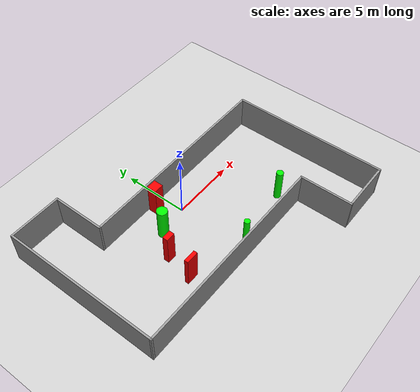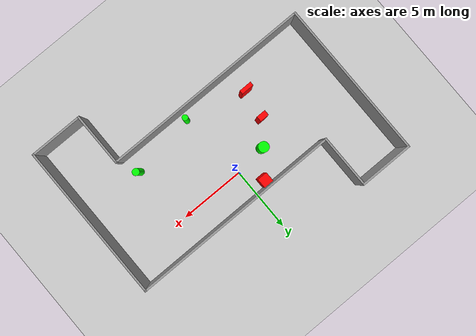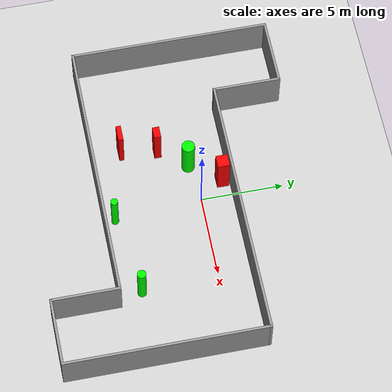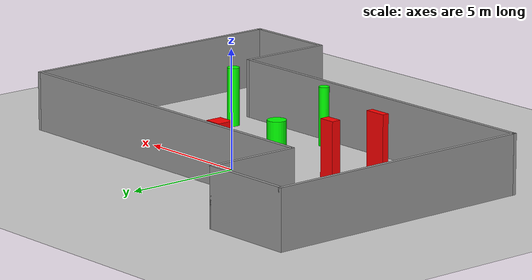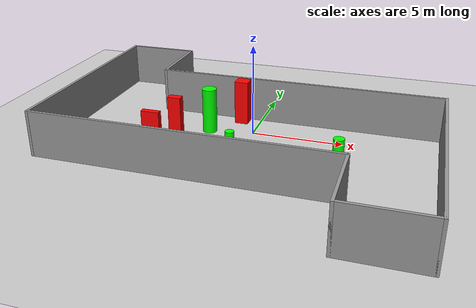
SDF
<sdf version="1.7">
 <world name="default">
  <light name="sun" type="directional">
   <pose>0 0 10 0 -0 0</pose>
   <diffuse>0.8 0.8 0.8 1</diffuse>
   <specular>0.2 0.2 0.2 1</specular>
   <attenuation>
    <range>1000</range>
    <constant>0.9</constant>
    <linear>0.01</linear>
    <quadratic>0.001</quadratic>
   </attenuation>
   <direction>-0.5 0.1 -0.9</direction>
   <spot><inner_angle>0</inner_angle><outer_angle>0</outer_angle><falloff>0</falloff></spot>
  </light>
  <model name="ground_plane">
   <static>1</static>
   <link name="link">
    <collision name="collision">
     <geometry><plane><normal>0 0 1</normal><size>100 100</size></plane></geometry>
     <surface>
      <contact><collide_bitmask>65535</collide_bitmask></contact>
      <friction><ode><mu>100</mu><mu2>50</mu2></ode></friction>
     </surface>
    </collision>
    <visual name="visual">
     <cast_shadows>0</cast_shadows>
     <geometry><plane><normal>0 0 1</normal><size>100 100</size></plane></geometry>
     <material>
      <script><uri>file://media/materials/scripts/gazebo.material</uri><name>Gazebo/Grey</name></script>
     </material>
    </visual>
   </link>
  </model>
  <gravity>0 0 -9.8</gravity>
  <magnetic_field>6e-06 2.3e-05 -4.2e-05</magnetic_field>
  <atmosphere type="adiabatic"/>
  <physics type="ode">
   <max_step_size>0.001</max_step_size>
   <real_time_factor>1</real_time_factor>
   <real_time_update_rate>1000</real_time_update_rate>
  </physics>
  <scene><ambient>0.4 0.4 0.4 1</ambient><background>0.7 0.7 0.7 1</background><shadows>1</shadows></scene>
  <spherical_coordinates>
   <surface_model>EARTH_WGS84</surface_model>
   <latitude_deg>0</latitude_deg>
   <longitude_deg>0</longitude_deg>
   <elevation>0</elevation>
   <heading_deg>0</heading_deg>
  </spherical_coordinates>
  <model name="my_base_walls">
   <link name="Wall_13">
    <collision name="Wall_13_Collision">
     <geometry><box><size>12.15 0.15 2.5</size></box></geometry>
     <pose>0 0 1.25 0 -0 0</pose>
    </collision>
    <visual name="Wall_13_Visual">
     <pose>0 0 1.25 0 -0 0</pose>
     <geometry><box><size>12.15 0.15 2.5</size></box></geometry>
     <material>
      <script><uri>file://media/materials/scripts/gazebo.material</uri><name>Gazebo/Grey</name></script>
      <ambient>1 1 1 1</ambient>
     </material>
     <meta><layer>0</layer></meta>
    </visual>
    <pose>10 -2 0 0 -0 1.5708</pose>
   </link>
   <link name="Wall_15">
    <collision name="Wall_15_Collision">
     <geometry><box><size>16.15 0.15 2.5</size></box></geometry>
     <pose>0 0 1.25 0 -0 0</pose>
    </collision>
    <visual name="Wall_15_Visual">
     <pose>0 0 1.25 0 -0 0</pose>
     <geometry><box><size>16.15 0.15 2.5</size></box></geometry>
     <material>
      <script><uri>file://media/materials/scripts/gazebo.material</uri><name>Gazebo/Grey</name></script>
      <ambient>1 1 1 1</ambient>
     </material>
     <meta><layer>0</layer></meta>
    </visual>
    <pose>2 4 0 0 -0 3.14159</pose>
   </link>
   <link name="Wall_17">
    <collision name="Wall_17_Collision">
     <geometry><box><size>4.15 0.15 2.5</size></box></geometry>
     <pose>0 0 1.25 0 -0 0</pose>
    </collision>
    <visual name="Wall_17_Visual">
     <pose>0 0 1.25 0 -0 0</pose>
     <geometry><box><size>4.15 0.15 2.5</size></box></geometry>
     <material>
      <script><uri>file://media/materials/scripts/gazebo.material</uri><name>Gazebo/Grey</name></script>
      <ambient>1 1 1 1</ambient>
     </material>
     <meta><layer>0</layer></meta>
    </visual>
    <pose>6 -6 0 0 -0 -1.5708</pose>
   </link>
   <link name="Wall_19">
    <collision name="Wall_19_Collision">
     <geometry><box><size>12.15 0.15 2.5</size></box></geometry>
     <pose>0 0 1.25 0 -0 0</pose>
    </collision>
    <visual name="Wall_19_Visual">
     <pose>0 0 1.25 0 -0 0</pose>
     <geometry><box><size>12.15 0.15 2.5</size></box></geometry>
     <material>
      <script><uri>file://media/materials/scripts/gazebo.material</uri><name>Gazebo/Grey</name></script>
      <ambient>1 1 1 1</ambient>
     </material>
     <meta><layer>0</layer></meta>
    </visual>
    <pose>-10 2 0 0 -0 1.5708</pose>
   </link>
   <link name="Wall_21">
    <collision name="Wall_21_Collision">
     <geometry><box><size>4.15 0.15 2.5</size></box></geometry>
     <pose>0 0 1.25 0 -0 0</pose>
    </collision>
    <visual name="Wall_21_Visual">
     <pose>0 0 1.25 0 -0 0</pose>
     <geometry><box><size>4.15 0.15 2.5</size></box></geometry>
     <material>
      <script><uri>file://media/materials/scripts/gazebo.material</uri><name>Gazebo/Grey</name></script>
      <ambient>1 1 1 1</ambient>
     </material>
     <meta><layer>0</layer></meta>
    </visual>
    <pose>-8 8 0 0 -0 0</pose>
   </link>
   <link name="Wall_23">
    <collision name="Wall_23_Collision">
     <geometry><box><size>4.15 0.15 2.5</size></box></geometry>
     <pose>0 0 1.25 0 -0 0</pose>
    </collision>
    <visual name="Wall_23_Visual">
     <pose>0 0 1.25 0 -0 0</pose>
     <geometry><box><size>4.15 0.15 2.5</size></box></geometry>
     <material>
      <script><uri>file://media/materials/scripts/gazebo.material</uri><name>Gazebo/Grey</name></script>
      <ambient>1 1 1 1</ambient>
     </material>
     <meta><layer>0</layer></meta>
    </visual>
    <pose>-6 6 0 0 -0 -1.5708</pose>
   </link>
   <link name="Wall_25">
    <collision name="Wall_25_Collision">
     <geometry><box><size>4.15 0.15 2.5</size></box></geometry>
     <pose>0 0 1.25 0 -0 0</pose>
    </collision>
    <visual name="Wall_25_Visual">
     <pose>0 0 1.25 0 -0 0</pose>
     <geometry><box><size>4.15 0.15 2.5</size></box></geometry>
     <material>
      <script><uri>file://media/materials/scripts/gazebo.material</uri><name>Gazebo/Grey</name></script>
      <ambient>1 1 1 1</ambient>
     </material>
     <meta><layer>0</layer></meta>
    </visual>
    <pose>8 -8 0 0 -0 0</pose>
   </link>
   <link name="Wall_9">
    <collision name="Wall_9_Collision">
     <geometry><box><size>16.15 0.15 2.5</size></box></geometry>
     <pose>0 0 1.25 0 -0 0</pose>
    </collision>
    <visual name="Wall_9_Visual">
     <pose>0 0 1.25 0 -0 0</pose>
     <geometry><box><size>16.15 0.15 2.5</size></box></geometry>
     <material>
      <script><uri>file://media/materials/scripts/gazebo.material</uri><name>Gazebo/Grey</name></script>
      <ambient>1 1 1 1</ambient>
     </material>
     <meta><layer>0</layer></meta>
    </visual>
    <pose>-2 -4 0 0 -0 3.14159</pose>
   </link>
   <static>1</static>
   <pose>-0 -2 0 0 -0 0</pose>
  </model>
  <model name="cylinder1">
   <static>1</static>
   <link name="link">
    <inertial>
     <mass>1</mass>
     <inertia><ixx>0.5</ixx><ixy>0</ixy><ixz>0</ixz><iyy>0.5</iyy><iyz>0</iyz><izz>1</izz></inertia>
    </inertial>
    <collision name="collision">
     <geometry><cylinder><radius>0.3951546831789495</radius><length>2.5</length></cylinder></geometry>
    </collision>
    <visual name="visual">
     <geometry><cylinder><radius>0.3951546831789495</radius><length>2.5</length></cylinder></geometry>
     <material>
      <ambient>0 1 0 1</ambient>
      <diffuse>0 1 0 1</diffuse>
      <specular>0.1 0.1 0.1 1</specular>
      <emissive>0 0 0 0</emissive>
     </material>
    </visual>
   </link>
   <pose>-2.4003170836155436 -0.3211916393191263 1.25 0 0 0</pose>
  </model>
  <model name="cylinder2">
   <static>1</static>
   <link name="link">
    <inertial>
     <mass>1</mass>
     <inertia><ixx>0.5</ixx><ixy>0</ixy><ixz>0</ixz><iyy>0.5</iyy><iyz>0</iyz><izz>1</izz></inertia>
    </inertial>
    <collision name="collision">
     <geometry><cylinder><radius>0.21806302159300625</radius><length>2.5</length></cylinder></geometry>
    </collision>
    <visual name="visual">
     <geometry><cylinder><radius>0.21806302159300625</radius><length>2.5</length></cylinder></geometry>
     <material>
      <ambient>0 1 0 1</ambient>
      <diffuse>0 1 0 1</diffuse>
      <specular>0.1 0.1 0.1 1</specular>
      <emissive>0 0 0 0</emissive>
     </material>
    </visual>
   </link>
   <pose>0.43596429347012133 -5.318447770678654 1.25 0 0 0</pose>
  </model>
  <model name="cylinder3">
   <static>1</static>
   <link name="link">
    <inertial>
     <mass>1</mass>
     <inertia><ixx>0.5</ixx><ixy>0</ixy><ixz>0</ixz><iyy>0.5</iyy><iyz>0</iyz><izz>1</izz></inertia>
    </inertial>
    <collision name="collision">
     <geometry><cylinder><radius>0.2651290634495557</radius><length>2.5</length></cylinder></geometry>
    </collision>
    <visual name="visual">
     <geometry><cylinder><radius>0.2651290634495557</radius><length>2.5</length></cylinder></geometry>
     <material>
      <ambient>0 1 0 1</ambient>
      <diffuse>0 1 0 1</diffuse>
      <specular>0.1 0.1 0.1 1</specular>
      <emissive>0 0 0 0</emissive>
     </material>
    </visual>
   </link>
   <pose>5.387437113103909 -4.613479647666833 1.25 0 0 0</pose>
  </model>
  <model name="box1">
   <static>1</static>
   <link name="link">
    <inertial>
     <mass>1</mass>
     <inertia><ixx>0.083</ixx><ixy>0</ixy><ixz>0</ixz><iyy>0.083</iyy><iyz>0</iyz><izz>0.083</izz></inertia>
    </inertial>
    <collision name="collision">
     <geometry><box><size>0.7071214036955875 0.41485292613133123 2.5</size></box></geometry>
    </collision>
    <visual name="visual">
     <geometry><box><size>0.7071214036955875 0.41485292613133123 2.5</size></box></geometry>
     <material>
      <ambient>1 0 0 1</ambient>
      <diffuse>1 0 0 1</diffuse>
      <specular>0.1 0.1 0.1 1</specular>
      <emissive>0 0 0 0</emissive>
     </material>
    </visual>
    <sensor name="my_contact" type="contact">
     <contact><collision>box_collision</collision><topic>__default_topic__</topic></contact>
    </sensor>
   </link>
   <pose>-3.7149201511496575 -1.9920559800795958 1.25 0 0 0</pose>
  </model>
  <model name="box2">
   <static>1</static>
   <link name="link">
    <inertial>
     <mass>1</mass>
     <inertia><ixx>0.083</ixx><ixy>0</ixy><ixz>0</ixz><iyy>0.083</iyy><iyz>0</iyz><izz>0.083</izz></inertia>
    </inertial>
    <collision name="collision">
     <geometry><box><size>0.7595374951426166 0.7280139293123234 2.5</size></box></geometry>
    </collision>
    <visual name="visual">
     <geometry><box><size>0.7595374951426166 0.7280139293123234 2.5</size></box></geometry>
     <material>
      <ambient>1 0 0 1</ambient>
      <diffuse>1 0 0 1</diffuse>
      <specular>0.1 0.1 0.1 1</specular>
      <emissive>0 0 0 0</emissive>
     </material>
    </visual>
    <sensor name="my_contact" type="contact">
     <contact><collision>box_collision</collision><topic>__default_topic__</topic></contact>
    </sensor>
   </link>
   <pose>-1.031991959169483 1.4881267661685458 1.25 0 0 0</pose>
  </model>
  <model name="box3">
   <static>1</static>
   <link name="link">
    <inertial>
     <mass>1</mass>
     <inertia><ixx>0.083</ixx><ixy>0</ixy><ixz>0</ixz><iyy>0.083</iyy><iyz>0</iyz><izz>0.083</izz></inertia>
    </inertial>
    <collision name="collision">
     <geometry><box><size>0.9601634153536034 0.29561353529836776 2.5</size></box></geometry>
    </collision>
    <visual name="visual">
     <geometry><box><size>0.9601634153536034 0.29561353529836776 2.5</size></box></geometry>
     <material>
      <ambient>1 0 0 1</ambient>
      <diffuse>1 0 0 1</diffuse>
      <specular>0.1 0.1 0.1 1</specular>
      <emissive>0 0 0 0</emissive>
     </material>
    </visual>
    <sensor name="my_contact" type="contact">
     <contact><collision>box_collision</collision><topic>__default_topic__</topic></contact>
    </sensor>
   </link>
   <pose>-4.092243235469062 -4.176432954372102 1.25 0 0 0</pose>
  </model>
 </world>
</sdf>
